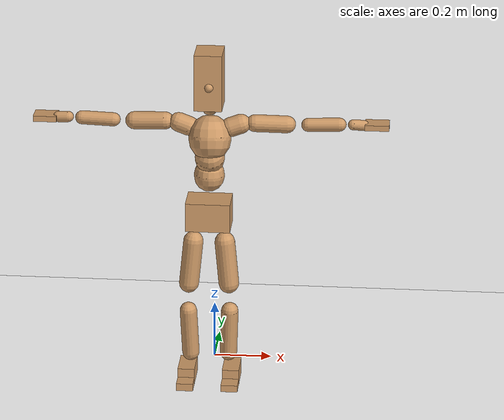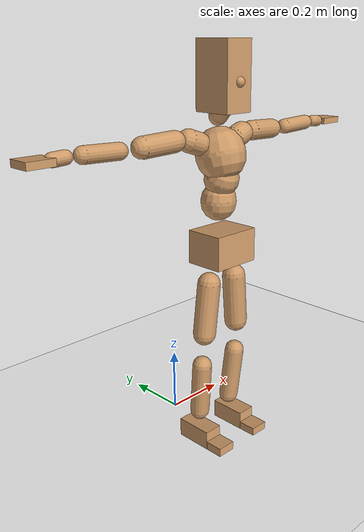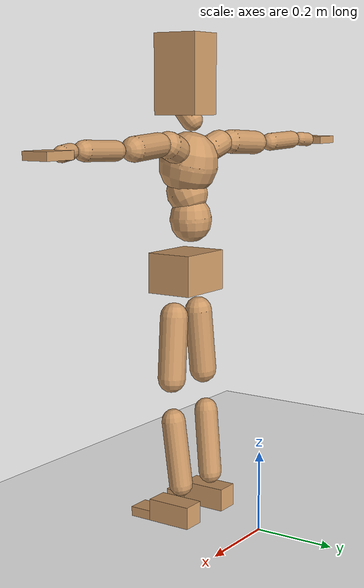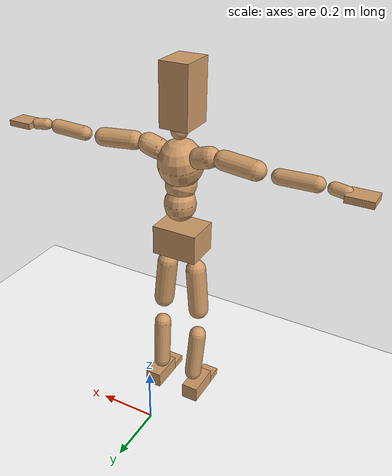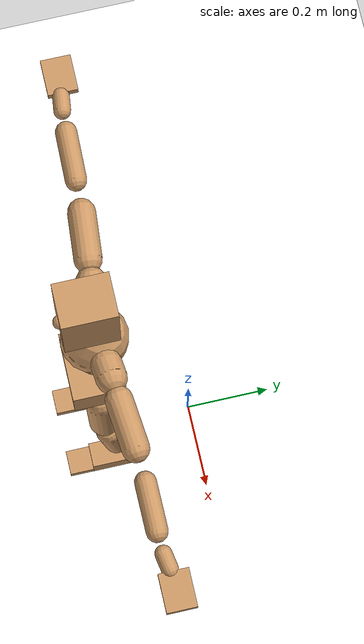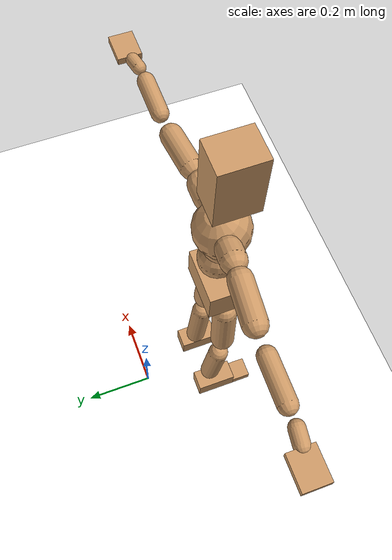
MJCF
<mujoco model="humanoid">
  <option integrator="implicitfast" />

  <visual>
    <global offwidth="1280" offheight="960" />
    <headlight active="1" ambient="0.34 0.34 0.34" diffuse="0.5 0.5 0.5" />
  </visual>

  <default>
    <joint damping="2" stiffness="2" armature="0.01" limited="true" solimplimit="0 .99 .01" />
    <geom condim="1" friction="0.7 0.005 0.0001" solimp=".99 .99 .003" solref="0.015 1" margin="0.001" rgba="0.8 0.6 .4 1" />
    <default class="smplcontact">
      <geom condim="3" friction="1. 0.005 0.0001" solref="0.015 1" solimp="0.98 0.98 0.001" priority="1" />
    </default>
    <default class="stiff_medium">
      <joint stiffness="10" />
    </default>
    <default class="stiff_medium_higher">
      <joint stiffness="50" />
    </default>
    <default class="stiff_high">
      <joint stiffness="100" />
    </default>
  </default>

  <asset>
    <texture type="skybox" builtin="gradient" rgb1="0.99 0.99 0.99" rgb2="0.608 0.828 0.892" width="100" />
    <texture builtin="flat" height="1278" mark="cross" markrgb="1 1 1" name="texgeom" random="0.01" rgb1="0.8 0.6 0.4" rgb2="0.8 0.6 0.4" type="cube" width="127" />
    <texture name="texplane" type="2d" builtin="checker" markrgb="1 1 1" rgb1="0.756 0.772 0.76" rgb2="0.6 0.6 0.6" width="100" height="100" />
    <material name="MatPlane" reflectance="0.5" texture="texplane" texrepeat="1 1" texuniform="true" />
    <material name="geom" texture="texgeom" texuniform="true" />
  </asset>

  <worldbody>
    <light name="tracking_light" pos="0 0 7" dir="0 0 -1" directional="true" cutoff="100" exponent="1" diffuse="1 1 1" specular="0.1 0.1 0.1" mode="trackcom" />
    <camera name="back" pos="0 3 2.4" xyaxes="-1 0 0 0 -1 2" mode="trackcom" />
    <camera name="side" pos="-3 0 2.4" xyaxes="0 -1 0 1 0 2" mode="trackcom" />
    <camera name="front_side" pos="-2.8 -2.8 0.8" xyaxes="0.5 -0.5 0 0.1 0.1 1" mode="trackcom" />
    <geom condim="3" name="floor" pos="0 0 0" rgba="1 1 1 1" size="100 100 .2" type="plane" material="MatPlane" />
    <body name="Pelvis" pos="-0.0018 -0.2233 0.640442" euler="90 0 0">
      <site name="Pelvis" size="0.01" />
      <freejoint name="Pelvis" />
      <geom type="box" pos="0 -0.00841676 -0.0039534" size="0.0768397 0.0502223 0.0596604" quat="1.0000 0.0000 0.0000 0.0000" density="3165.830099" name="Pelvis" />
      <body name="L_Hip" pos="0.0499566 -0.0635778 -0.00488784">
        <joint name="L_Hip_x" type="hinge" pos="0 0 0" axis="1 0 0" stiffness="1.4435114285714286" range="-160.0 22.92" class="stiff_medium" damping="1.8055693074082326" armature="0.0010037500560024384"/>
        <joint name="L_Hip_y" type="hinge" pos="0 0 0" axis="0 1 0" stiffness="1.4474810204081634" range="-70.0 70.0" class="stiff_medium" damping="1.0898184230190353" armature="0.000820531791716886"/>
        <joint name="L_Hip_z" type="hinge" pos="0 0 0" axis="0 0 1" stiffness="1.4475604081632654" range="-28.65 90.0" class="stiff_medium" damping="1.2052482108207931" armature="0.0010034974993063548"/>
        <geom type="capsule" density="2040.816327" fromto="0.0047474 -0.0516983 -0.000620282 0.018878 -0.206929 -0.00248139" size="0.0349136" name="L_Hip" />
        <body name="L_Knee" pos="0.0236254 -0.258627 -0.00310167">
          <joint name="L_Knee_x" type="hinge" pos="0 0 0" axis="1 0 0" range="-5.16 171.89" damping="0.9782346207754218" armature="0.0010306833616320807" stiffness="0.29014214285714285"/>
          <joint name="L_Knee_y" type="hinge" pos="0 0 0" axis="0 1 0" range="-4.58 6.88" damping="0.8874071365348373" armature="0.0008529901513204316" stiffness="0.288504"/>
          <joint name="L_Knee_z" type="hinge" pos="0 0 0" axis="0 0 1" range="-6.88 4.58" damping="0.9845656842141446" armature="0.0010296405233437727" stiffness="0.2942075306122449"/>
          <geom type="capsule" density="1234.567901" fromto="-0.00186411 -0.0548193 -0.00600089 -0.00751145 -0.219281 -0.0241137" size="0.0296901" name="L_Knee" />
          <body name="L_Ankle" pos="-0.00937557 -0.2741 -0.0301146">
            <joint name="L_Ankle_x" type="hinge" pos="0 0 0" axis="1 0 0" range="-45.84 45.84" class="stiff_medium" damping="0.8161984379423823" armature="0.0010997441188726849" stiffness="1.6826638696808507"/>
            <joint name="L_Ankle_y" type="hinge" pos="0 0 0" axis="0 1 0" range="-74.48 22.92" class="stiff_medium" damping="0.3994932548215907" armature="0.0011029711649096219" stiffness="1.6077267346938777"/>
            <joint name="L_Ankle_z" type="hinge" pos="0 0 0" axis="0 0 1" range="-4.58 4.58" class="stiff_medium" damping="0.6975882575056699" armature="0.0009034196987723482" stiffness="1.4962572448979592"/>
            <geom type="box" pos="0.0140732 -0.0144356 0.016427" size="0.0291732 0.0280256 0.057698" quat="1.0000 0.0000 0.0000 0.0000" density="449.071558" name="L_Ankle" class="smplcontact" />
            <body name="L_Toe" pos="0.0159456 -0.0337032 0.0809808">
              <joint name="L_Toe_x" type="hinge" pos="0 0 0" axis="1 0 0" range="-91.67 22.92" armature="0.0011149677876983435" damping="0.27350570149903464" stiffness="0.3354597755102041"/>
              <joint name="L_Toe_y" type="hinge" pos="0 0 0" axis="0 1 0" range="-4.58 4.58" armature="0.0010554260131855492" damping="0.2651046312531782" stiffness="0.3329483290816327"/>
              <joint name="L_Toe_z" type="hinge" pos="0 0 0" axis="0 0 1" range="-4.58 4.58" armature="0.000903419494061008" damping="0.2324884203440568" stiffness="0.29914599999999997"/>
              <geom type="box" pos="-0.001812 0.003322 0.0168342" size="0.0288712 0.01208 0.0336685" quat="1.0000 0.0000 0.0000 0.0000" density="423.206892" name="L_Toe" class="smplcontact" />
            </body>
          </body>
        </body>
      </body>
      <body name="R_Hip" pos="-0.0486628 -0.0629518 -0.00309084">
        <joint name="R_Hip_x" type="hinge" pos="0 0 0" axis="1 0 0" stiffness="1.4435114285714286" range="-160.0 22.92" class="stiff_medium" damping="1.8055693074082326" armature="0.0010037500560024384"/>
        <joint name="R_Hip_y" type="hinge" pos="0 0 0" axis="0 1 0" stiffness="1.4474810204081634" range="-70.0 70.0" class="stiff_medium" damping="1.0898184230190353" armature="0.000820531791716886"/>
        <joint name="R_Hip_z" type="hinge" pos="0 0 0" axis="0 0 1" stiffness="1.4475604081632654" range="-90.0 28.65" class="stiff_medium" damping="1.2052482108207931" armature="0.0010034974993063548"/>
        <geom type="capsule" density="2040.816327" fromto="-0.00529919 -0.0527324 -0.00123661 -0.0210842 -0.210996 -0.0048899" size="0.0344026" name="R_Hip" />
        <body name="R_Knee" pos="-0.0263834 -0.263728 -0.00612652">
          <joint name="R_Knee_x" type="hinge" pos="0 0 0" axis="1 0 0" range="-5.16 171.89" damping="0.9782346207754218" armature="0.0010306833616320807" stiffness="0.29014214285714285"/>
          <joint name="R_Knee_y" type="hinge" pos="0 0 0" axis="0 1 0" range="-6.88 4.58" damping="0.8874071365348373" armature="0.0008529901513204316" stiffness="0.288504"/>
          <joint name="R_Knee_z" type="hinge" pos="0 0 0" axis="0 0 1" range="-4.58 6.88" damping="0.9845656842141446" armature="0.0010296405233437727" stiffness="0.2942075306122449"/>
          <geom type="capsule" density="1234.567901" fromto="0.00219475 -0.0548907 -0.00584525 0.00866853 -0.21949 -0.0232694" size="0.0296901" name="R_Knee" />
          <body name="R_Ankle" pos="0.0108633 -0.274381 -0.0291146">
            <joint name="R_Ankle_x" type="hinge" pos="0 0 0" axis="1 0 0" range="-45.84 45.84" class="stiff_medium" damping="0.8161984379423823" armature="0.0010997441188726849" stiffness="1.6826638696808507"/>
            <joint name="R_Ankle_y" type="hinge" pos="0 0 0" axis="0 1 0" range="-22.92 74.48" class="stiff_medium" damping="0.3994932548215907" armature="0.0011029711649096219" stiffness="1.6077267346938777"/>
            <joint name="R_Ankle_z" type="hinge" pos="0 0 0" axis="0 0 1" range="-4.58 4.58" class="stiff_medium" damping="0.6975882575056699" armature="0.0009034196987723482" stiffness="1.4962572448979592"/>
            <geom type="box" pos="-0.0128048 -0.0105096 0.0173773" size="0.0291732 0.0288712 0.0587162" quat="1.0000 0.0000 0.0000 0.0000" density="434.700981" name="R_Ankle" class="smplcontact" />
            <body name="R_Toe" pos="-0.0153416 -0.0290524 0.083696">
              <joint name="R_Toe_x" type="hinge" pos="0 0 0" axis="1 0 0" range="-91.67 22.92" armature="0.0011149677876983435" damping="0.27350570149903464" stiffness="0.3354597755102041"/>
              <joint name="R_Toe_y" type="hinge" pos="0 0 0" axis="0 1 0" range="-4.58 4.58" armature="0.0010554260131855492" damping="0.2651046312531782" stiffness="0.3329483290816327"/>
              <joint name="R_Toe_z" type="hinge" pos="0 0 0" axis="0 0 1" range="-4.58 4.58" armature="0.000903419494061008" damping="0.2324884203440568" stiffness="0.29914599999999997"/>
              <geom type="box" pos="0.0025368 0.002718 0.0154088" size="0.0289316 0.0130464 0.0334648" quat="1.0000 0.0000 0.0000 0.0000" density="407.384095" name="R_Toe" class="smplcontact" />
            </body>
          </body>
        </body>
      </body>
      <body name="Torso" pos="-0.001797 0.0758204 -0.019192">
        <joint name="Torso_x" type="hinge" pos="0 0 0" axis="1 0 0" range="-25.78 57.3" class="stiff_medium" damping="3.3466509204578423" armature="0.0019444567009853787" stiffness="2.5600004081632655"/>
        <joint name="Torso_y" type="hinge" pos="0 0 0" axis="0 1 0" range="-57.3 57.3" class="stiff_high" damping="3.4239488161939002" armature="0.001114555096926135" stiffness="26.2962"/>
        <joint name="Torso_z" type="hinge" pos="0 0 0" axis="0 0 1" range="-34.38 34.38" class="stiff_high" damping="4.130510414994381" armature="0.001661490498603756" stiffness="25.671402127659583"/>
        <geom type="capsule" density="2040.816327" fromto="0.0017455 0.0425967 0.000349101 0.0020958 0.0520548 0.000419161" size="0.0520152" name="Torso" />
        <body name="Spine" pos="0.0038414 0.0947216 0.000768279">
          <joint name="Spine_x" type="hinge" pos="0 0 0" axis="1 0 0" stiffness="2.665857346938776" range="-25.78 57.3" class="stiff_medium" damping="3.582128845617695" armature="0.0021392570980490735"/>
          <joint name="Spine_y" type="hinge" pos="0 0 0" axis="0 1 0" stiffness="2.712602765957447" range="-57.3 57.3" class="stiff_high" damping="1.3894708088073262" armature="0.0011120714212866914"/>
          <joint name="Spine_z" type="hinge" pos="0 0 0" axis="0 0 1" stiffness="5.286907272727274" range="-34.38 34.38" class="stiff_high" damping="2.447944236497594" armature="0.0015742324166410286"/>
          <geom type="capsule" density="2040.816327" fromto="0.000484299 0.0166717 0.00799226 0.000554359 0.0203849 0.00981382" size="0.0510682" name="Spine" />
          <body name="Chest" pos="0.00103866 0.0370567 0.0178061">
            <joint name="Chest_x" type="hinge" pos="0 0 0" axis="1 0 0" stiffness="2.7215524444444443" range="-25.78 57.3" class="stiff_medium" damping="3.7093601898879403" armature="0.002246977830843523"/>
            <joint name="Chest_y" type="hinge" pos="0 0 0" axis="0 1 0" stiffness="2.388109666666667" range="-57.3 57.3" class="stiff_high" damping="1.3028502586120798" armature="0.0011105925771923062"/>
            <joint name="Chest_z" type="hinge" pos="0 0 0" axis="0 0 1" stiffness="5.539173023255813" range="-34.38 34.38" class="stiff_high" damping="2.461140555293816" armature="0.0015187818769960958"/>
            <geom type="capsule" density="2040.816327" fromto="-0.000642928 0.0477829 -0.0121122 -0.000712988 0.058362 -0.0148446" size="0.0729656" name="Chest" />
            <body name="Neck" pos="-0.00200041 0.149941 -0.0297362">
              <joint name="Neck_x" type="hinge" pos="0 0 0" axis="1 0 0" range="-28.65 57.3" class="stiff_medium_higher" damping="3.3677529619663344" armature="0.0031223109587198926" stiffness="18.16244468085106"/>
              <joint name="Neck_y" type="hinge" pos="0 0 0" axis="0 1 0" range="-40.11 40.11" class="stiff_medium_higher" damping="3.1233087236470336" armature="0.00272617026606622" stiffness="17.891504255319152"/>
              <joint name="Neck_z" type="hinge" pos="0 0 0" axis="0 0 1" range="-40.11 40.11" class="stiff_medium_higher" damping="3.5190884162963605" armature="0.0031813014022193595" stiffness="19.463706382978728"/>
              <geom type="capsule" density="1000" fromto="0.000681911 0.0088408 0.00700279 0.00278991 0.0353608 0.0279468" size="0.0272326" name="Neck" />
              <body name="Head" pos="0.00353409 0.0441992 0.0348852">
                <joint name="Head_x" type="hinge" pos="0 0 0" axis="1 0 0" range="-28.65 57.3" class="stiff_medium_higher" damping="0.7969552850782909" armature="0.003631055780558318" stiffness="21.864774489795916"/>
                <joint name="Head_y" type="hinge" pos="0 0 0" axis="0 1 0" range="-40.11 40.11" class="stiff_medium_higher" damping="0.7278195769797128" armature="0.0031350339842456322" stiffness="21.121036458333332"/>
                <joint name="Head_z" type="hinge" pos="0 0 0" axis="0 0 1" range="-40.11 40.11" class="stiff_medium_higher" damping="0.7958869503566885" armature="0.003661443877898695" stiffness="21.625213265306122"/>
                <geom type="box" pos="-0.00327432 0.0743461 -0.00904336" size="0.0472438 0.09794 0.0592496" quat="1.0000 0.0000 0.0000 0.0000" density="1018.069894" name="Head" />
                <geom type="capsule" name="nose" size="0.015592 0.007796" pos="0 0.059409 0.03898" quat="1 0 0 0" mass="0" contype="0" conaffinity="0" />
              </body>
            </body>
            <body name="L_Thorax" pos="0.0574044 0.0852588 -0.023963">
              <joint name="L_Thorax_x" type="hinge" pos="0 0 0" axis="1 0 0" range="-10.89 4.58" class="stiff_medium_higher" damping="2.356328992993461" armature="0.0009016855748194057" stiffness="7.697093197278912"/>
              <joint name="L_Thorax_y" type="hinge" pos="0 0 0" axis="0 1 0" range="-28.65 17.19" class="stiff_medium_higher" damping="2.491058324527435" armature="0.0010491863533980744" stiffness="7.393076020408163"/>
              <joint name="L_Thorax_z" type="hinge" pos="0 0 0" axis="0 0 1" range="-31.51 40.11" class="stiff_medium_higher" damping="2.4960131106012198" armature="0.0010486891229833626" stiffness="7.4260346938775506"/>
              <geom type="capsule" density="1000" fromto="0.0116243 0.00389606 -0.00114989 0.0464973 0.0155843 -0.004535" size="0.0336358" name="L_Thorax" />
              <body name="L_Shoulder" pos="0.0581217 0.0194803 -0.00568489">
                <joint name="L_Shoulder_x" type="hinge" pos="0 0 0" axis="1 0 0" range="-97.4 97.4" class="stiff_medium" damping="0.6895070244663385" armature="0.000849066735394822" stiffness="1.5553676530612242"/>
                <joint name="L_Shoulder_y" type="hinge" pos="0 0 0" axis="0 1 0" range="-108.86 80.21" class="stiff_medium" damping="0.7770179904463339" armature="0.0010911375324762415" stiffness="1.5370222448979591"/>
                <joint name="L_Shoulder_z" type="hinge" pos="0 0 0" axis="0 0 1" range="-97.4 85.94" class="stiff_medium" damping="0.7774575128228121" armature="0.0010912652195444754" stiffness="1.5385815306122452"/>
                <geom type="capsule" density="1000" fromto="0.0360813 -0.00179918 -0.00382321 0.144393 -0.0070827 -0.015294" size="0.0296086" name="L_Shoulder" />
                <body name="L_Elbow" pos="0.180475 -0.00888187 -0.0191172">
                  <joint name="L_Elbow_x" type="hinge" pos="0 0 0" axis="1 0 0" range="-17.19 4.58" damping="0.5629313687424012" armature="0.000796633611414303" stiffness="0.3182308367346939"/>
                  <joint name="L_Elbow_y" type="hinge" pos="0 0 0" axis="0 1 0" range="-180.0 17.19" damping="0.670699656724394" armature="0.0011308131035313198" stiffness="0.31824040816326526"/>
                  <joint name="L_Elbow_z" type="hinge" pos="0 0 0" axis="0 0 1" range="-100.84 4.58" damping="0.6709017588305417" armature="0.0011312590747464865" stiffness="0.31830669387755106"/>
                  <geom type="capsule" density="1000" fromto="0.0354377 0.00128055 -0.000146907 0.141893 0.00512319 -0.000645027" size="0.0231943" name="L_Elbow" />
                  <body name="L_Wrist" pos="0.177331 0.00640373 -0.000849204">
                    <joint name="L_Wrist_x" type="hinge" pos="0 0 0" axis="1 0 0" range="-180.0 22.92" armature="0.0008788801206494816" damping="0.24131789769782877" stiffness="0.3312984693877551"/>
                    <joint name="L_Wrist_y" type="hinge" pos="0 0 0" axis="0 1 0" range="-17.19 17.19" armature="0.0011443350528931005" damping="0.2738265258955244" stiffness="0.32761806122448983"/>
                    <joint name="L_Wrist_z" type="hinge" pos="0 0 0" axis="0 0 1" range="-22.92 22.92" armature="0.0011533193959445951" damping="0.27532537820688235" stiffness="0.328634306122449"/>
                    <geom type="capsule" density="1000" fromto="0.0114186 -0.00109105 -0.00203904 0.0456755 -0.00442158 -0.00815634" size="0.0182119" name="L_Wrist" class="smplcontact" />
                    <body name="L_Hand" pos="0.0570933 -0.00556983 -0.010138">
                      <joint name="L_Hand_x" type="hinge" pos="0 0 0" axis="1 0 0" range="-17.19 17.19" armature="0.0009404185163007659" damping="0.2591818995410865" stiffness="0.35715618038852914"/>
                      <joint name="L_Hand_y" type="hinge" pos="0 0 0" axis="0 1 0" range="-51.57 51.57" armature="0.001206309459621808" damping="0.29583778749218415" stiffness="0.362759306122449"/>
                      <joint name="L_Hand_z" type="hinge" pos="0 0 0" axis="0 0 1" range="-91.67 91.67" armature="0.0012783090615630592" damping="0.3050915122843883" stiffness="0.36407795918367347"/>
                      <geom type="box" pos="0.0348354 0.000604 -0.0035032" size="0.0413361 0.0095432 0.0324952" quat="1.0000 0.0000 0.0000 0.0000" density="400.552564" name="L_Hand" class="smplcontact" />
                    </body>
                  </body>
                </body>
              </body>
            </body>
            <body name="R_Thorax" pos="-0.0595446 0.0831645 -0.0272444">
              <joint name="R_Thorax_x" type="hinge" pos="0 0 0" axis="1 0 0" range="-10.89 4.58" class="stiff_medium_higher" damping="2.356328992993461" armature="0.0009016855748194057" stiffness="7.697093197278912"/>
              <joint name="R_Thorax_y" type="hinge" pos="0 0 0" axis="0 1 0" range="-17.19 28.65" class="stiff_medium_higher" damping="2.491058324527435" armature="0.0010491863533980744" stiffness="7.393076020408163"/>
              <joint name="R_Thorax_z" type="hinge" pos="0 0 0" axis="0 0 1" range="-40.11 31.51" class="stiff_medium_higher" damping="2.4960131106012198" armature="0.0010486891229833626" stiffness="7.4260346938775506"/>
              <geom type="capsule" density="1000" fromto="-0.0122631 0.00415156 -0.00114943 -0.0490522 0.0166062 -0.00466228" size="0.0329902" name="R_Thorax" />
              <body name="R_Shoulder" pos="-0.061315 0.0208223 -0.00581169">
                <joint name="R_Shoulder_x" type="hinge" pos="0 0 0" axis="1 0 0" range="-97.4 97.4" class="stiff_medium" damping="0.6895070244663385" armature="0.000849066735394822" stiffness="1.5553676530612242"/>
                <joint name="R_Shoulder_y" type="hinge" pos="0 0 0" axis="0 1 0" range="-80.21 108.86" class="stiff_medium" damping="0.7770179904463339" armature="0.0010911375324762415" stiffness="1.5370222448979591"/>
                <joint name="R_Shoulder_z" type="hinge" pos="0 0 0" axis="0 0 1" range="-85.94 97.4" class="stiff_medium" damping="0.7774575128228121" armature="0.0010912652195444754" stiffness="1.5385815306122452"/>
                <geom type="capsule" density="1000" fromto="-0.0352473 -0.00187256 -0.00298464 -0.141126 -0.00743416 -0.0118832" size="0.0304104" name="R_Shoulder" />
                <body name="R_Elbow" pos="-0.176373 -0.00924942 -0.0148678">
                  <joint name="R_Elbow_x" type="hinge" pos="0 0 0" axis="1 0 0" range="-17.19 4.58" damping="0.5629313687424012" armature="0.000796633611414303" stiffness="0.3182308367346939"/>
                  <joint name="R_Elbow_y" type="hinge" pos="0 0 0" axis="0 1 0" range="-17.19 180.0" damping="0.670699656724394" armature="0.0011308131035313198" stiffness="0.31824040816326526"/>
                  <joint name="R_Elbow_z" type="hinge" pos="0 0 0" axis="0 0 1" range="-4.58 100.84" damping="0.6709017588305417" armature="0.0011312590747464865" stiffness="0.31830669387755106"/>
                  <geom type="capsule" density="1000" fromto="-0.036363 0.00112959 -0.000782965 -0.145309 0.00440295 -0.00313125" size="0.0233662" name="R_Elbow" />
                  <body name="R_Wrist" pos="-0.181672 0.00553254 -0.00397149">
                    <joint name="R_Wrist_x" type="hinge" pos="0 0 0" axis="1 0 0" range="-180.0 22.92" armature="0.0008788801206494816" damping="0.24131789769782877" stiffness="0.3312984693877551"/>
                    <joint name="R_Wrist_y" type="hinge" pos="0 0 0" axis="0 1 0" range="-17.19 17.19" armature="0.0011443350528931005" damping="0.2738265258955244" stiffness="0.32761806122448983"/>
                    <joint name="R_Wrist_z" type="hinge" pos="0 0 0" axis="0 0 1" range="-22.92 22.92" armature="0.0011533193959445951" damping="0.27532537820688235" stiffness="0.328634306122449"/>
                    <geom type="capsule" density="1000" fromto="-0.0114872 -0.000818965 -0.0014234 -0.0460159 -0.00333385 -0.00563754" size="0.01867" name="R_Wrist" class="smplcontact" />
                    <body name="R_Hand" pos="-0.0575018 -0.00415273 -0.00700351">
                      <joint name="R_Hand_x" type="hinge" pos="0 0 0" axis="1 0 0" range="-17.19 17.19" armature="0.0009404185163007659" damping="0.2591818995410865" stiffness="0.35715618038852914"/>
                      <joint name="R_Hand_y" type="hinge" pos="0 0 0" axis="0 1 0" range="-51.57 51.57" armature="0.001206309459621808" damping="0.29583778749218415" stiffness="0.362759306122449"/>
                      <joint name="R_Hand_z" type="hinge" pos="0 0 0" axis="0 0 1" range="-91.67 91.67" armature="0.0012783090615630592" damping="0.3050915122843883" stiffness="0.36407795918367347"/>
                      <geom type="box" pos="-0.0326449 -0.0005436 -0.0047716" size="0.0402055 0.0099056 0.0329784" quat="1.0000 0.0000 0.0000 0.0000" density="403.679611" name="R_Hand" class="smplcontact" />
                    </body>
                  </body>
                </body>
              </body>
            </body>
          </body>
        </body>
      </body>
    </body>
  </worldbody>
  <actuator>
    <general name="L_Hip_x" joint="L_Hip_x" biastype="affine" gainprm="41.4764231296646" biasprm="-31.0823752603019 -25.983205714285713 -0.2407425743210977" ctrllimited="true" ctrlrange="-1 1" forcerange="-51.966411428571426 51.966411428571426" />
    <general name="L_Hip_y" joint="L_Hip_y" biastype="affine" gainprm="31.831770179474603" biasprm="0.0 -26.054658367346942 -0.21796368460380705" ctrllimited="true" ctrlrange="-1 1" forcerange="-52.109316734693884 52.109316734693884" />
    <general name="L_Hip_z" joint="L_Hip_z" biastype="affine" gainprm="26.978904816264805" biasprm="13.949901478953608 -26.056087346938778 -0.2410496421641586" ctrllimited="true" ctrlrange="-1 1" forcerange="-52.112174693877556 52.112174693877556" />
    <general name="L_Knee_x" joint="L_Knee_x" biastype="affine" gainprm="40.345641639289624" biasprm="37.99394990408788 -26.112792857142857 -0.24455865519385545" ctrllimited="true" ctrlrange="-1 1" forcerange="-52.225585714285714 52.225585714285714" />
    <general name="L_Knee_y" joint="L_Knee_y" biastype="affine" gainprm="2.5967272644580874" biasprm="0.5211581769854801 -25.965359999999997 -0.22185178413370932" ctrllimited="true" ctrlrange="-1 1" forcerange="-51.930719999999994 51.930719999999994" />
    <general name="L_Knee_z" joint="L_Knee_z" biastype="affine" gainprm="2.6480628211383683" biasprm="-0.5314611246612782 -26.47867775510204 -0.24614142105353615" ctrllimited="true" ctrlrange="-1 1" forcerange="-52.95735551020408 52.95735551020408" />
    <general name="L_Ankle_x" joint="L_Ankle_x" biastype="affine" gainprm="12.116072282724167" biasprm="0.0 -15.143974827127657 -0.2720661459807941" ctrllimited="true" ctrlrange="-1 1" forcerange="-30.287949654255314 30.287949654255314" />
    <general name="L_Ankle_y" joint="L_Ankle_y" biastype="affine" gainprm="12.298752784320362" biasprm="-6.510510200816816 -14.4695406122449 -0.26632883654772715" ctrllimited="true" ctrlrange="-1 1" forcerange="-28.9390812244898 28.9390812244898" />
    <general name="L_Ankle_z" joint="L_Ankle_z" biastype="affine" gainprm="1.0764444459754925" biasprm="0.0 -13.466315204081631 -0.23252941916855663" ctrllimited="true" ctrlrange="-1 1" forcerange="-26.932630408163263 26.932630408163263" />
    <general name="L_Toe_x" joint="L_Toe_x" biastype="affine" gainprm="12.076387616034964" biasprm="-7.245411018434451 -12.076551918367349 -0.10940228059961386" ctrllimited="true" ctrlrange="-1 1" forcerange="-24.153103836734697 24.153103836734697" />
    <general name="L_Toe_y" joint="L_Toe_y" biastype="affine" gainprm="0.9581250305957544" biasprm="0.0 -11.986139846938777 -0.10604185250127128" ctrllimited="true" ctrlrange="-1 1" forcerange="-23.972279693877553 23.972279693877553" />
    <general name="L_Toe_z" joint="L_Toe_z" biastype="affine" gainprm="0.8608521063709073" biasprm="0.0 -10.769255999999999 -0.09299536813762273" ctrllimited="true" ctrlrange="-1 1" forcerange="-21.538511999999997 21.538511999999997" />
    <general name="R_Hip_x" joint="R_Hip_x" biastype="affine" gainprm="41.4764231296646" biasprm="-31.0823752603019 -25.983205714285713 -0.2407425743210977" ctrllimited="true" ctrlrange="-1 1" forcerange="-51.966411428571426 51.966411428571426" />
    <general name="R_Hip_y" joint="R_Hip_y" biastype="affine" gainprm="31.831770179474603" biasprm="0.0 -26.054658367346942 -0.21796368460380705" ctrllimited="true" ctrlrange="-1 1" forcerange="-52.109316734693884 52.109316734693884" />
    <general name="R_Hip_z" joint="R_Hip_z" biastype="affine" gainprm="26.978904816264805" biasprm="-13.949901478953608 -26.056087346938778 -0.2410496421641586" ctrllimited="true" ctrlrange="-1 1" forcerange="-52.112174693877556 52.112174693877556" />
    <general name="R_Knee_x" joint="R_Knee_x" biastype="affine" gainprm="40.345641639289624" biasprm="37.99394990408788 -26.112792857142857 -0.24455865519385545" ctrllimited="true" ctrlrange="-1 1" forcerange="-52.225585714285714 52.225585714285714" />
    <general name="R_Knee_y" joint="R_Knee_y" biastype="affine" gainprm="2.5967272644580874" biasprm="-0.5211581769854801 -25.965359999999997 -0.22185178413370932" ctrllimited="true" ctrlrange="-1 1" forcerange="-51.930719999999994 51.930719999999994" />
    <general name="R_Knee_z" joint="R_Knee_z" biastype="affine" gainprm="2.6480628211383683" biasprm="0.5314611246612782 -26.47867775510204 -0.24614142105353615" ctrllimited="true" ctrlrange="-1 1" forcerange="-52.95735551020408 52.95735551020408" />
    <general name="R_Ankle_x" joint="R_Ankle_x" biastype="affine" gainprm="12.116072282724167" biasprm="0.0 -15.143974827127657 -0.2720661459807941" ctrllimited="true" ctrlrange="-1 1" forcerange="-30.287949654255314 30.287949654255314" />
    <general name="R_Ankle_y" joint="R_Ankle_y" biastype="affine" gainprm="12.298752784320362" biasprm="6.510510200816816 -14.4695406122449 -0.26632883654772715" ctrllimited="true" ctrlrange="-1 1" forcerange="-28.9390812244898 28.9390812244898" />
    <general name="R_Ankle_z" joint="R_Ankle_z" biastype="affine" gainprm="1.0764444459754925" biasprm="0.0 -13.466315204081631 -0.23252941916855663" ctrllimited="true" ctrlrange="-1 1" forcerange="-26.932630408163263 26.932630408163263" />
    <general name="R_Toe_x" joint="R_Toe_x" biastype="affine" gainprm="12.076387616034964" biasprm="-7.245411018434451 -12.076551918367349 -0.10940228059961386" ctrllimited="true" ctrlrange="-1 1" forcerange="-24.153103836734697 24.153103836734697" />
    <general name="R_Toe_y" joint="R_Toe_y" biastype="affine" gainprm="0.9581250305957544" biasprm="0.0 -11.986139846938777 -0.10604185250127128" ctrllimited="true" ctrlrange="-1 1" forcerange="-23.972279693877553 23.972279693877553" />
    <general name="R_Toe_z" joint="R_Toe_z" biastype="affine" gainprm="0.8608521063709073" biasprm="0.0 -10.769255999999999 -0.09299536813762273" ctrllimited="true" ctrlrange="-1 1" forcerange="-21.538511999999997 21.538511999999997" />
    <general name="Torso_x" joint="Torso_x" biastype="affine" gainprm="44.54460744948417" biasprm="16.899928103126392 -61.44000979591837 -0.8924402454554247" ctrllimited="true" ctrlrange="-1 1" forcerange="-92.16001469387756 92.16001469387756" />
    <general name="Torso_y" joint="Torso_y" biastype="affine" gainprm="63.11552883531852" biasprm="0.0 -63.110879999999995 -0.68478976323878" ctrllimited="true" ctrlrange="-1 1" forcerange="-94.66631999999998 94.66631999999998" />
    <general name="Torso_z" joint="Torso_z" biastype="affine" gainprm="36.969542091207614" biasprm="0.0 -61.611365106383 -0.8261020829988763" ctrllimited="true" ctrlrange="-1 1" forcerange="-92.4170476595745 92.4170476595745" />
    <general name="Spine_x" joint="Spine_x" biastype="affine" gainprm="46.38654300876102" biasprm="17.598746216130802 -63.980576326530624 -0.9552343588313853" ctrllimited="true" ctrlrange="-1 1" forcerange="-95.97086448979593 95.97086448979593" />
    <general name="Spine_y" joint="Spine_y" biastype="affine" gainprm="65.10726192132401" biasprm="0.0 -65.10246638297873 -0.6947354044036631" ctrllimited="true" ctrlrange="-1 1" forcerange="-97.65369957446809 97.65369957446809" />
    <general name="Spine_z" joint="Spine_z" biastype="affine" gainprm="38.06853633849836" biasprm="0.0 -63.44288727272728 -0.8159814121658647" ctrllimited="true" ctrlrange="-1 1" forcerange="-95.16433090909092 95.16433090909092" />
    <general name="Chest_x" joint="Chest_x" biastype="affine" gainprm="47.355650766455" biasprm="17.96641926045572 -65.31725866666666 -0.9891627173034507" ctrllimited="true" ctrlrange="-1 1" forcerange="-97.975888 97.975888" />
    <general name="Chest_y" joint="Chest_y" biastype="affine" gainprm="57.318853875618125" biasprm="0.0 -57.314632 -0.6514251293060399" ctrllimited="true" ctrlrange="-1 1" forcerange="-85.971948 85.971948" />
    <general name="Chest_z" joint="Chest_z" biastype="affine" gainprm="39.88498353447884" biasprm="0.0 -66.47007627906976 -0.8203801850979388" ctrllimited="true" ctrlrange="-1 1" forcerange="-99.70511441860464 99.70511441860464" />
    <general name="Neck_x" joint="Neck_x" biastype="affine" gainprm="9.808442577983886" biasprm="3.2694808593279623 -13.076960170212764 -0.26942023695730677" ctrllimited="true" ctrlrange="-1 1" forcerange="-26.15392034042553 26.15392034042553" />
    <general name="Neck_y" joint="Neck_y" biastype="affine" gainprm="9.017982372894267" biasprm="0.0 -12.88188306382979 -0.2498646978917627" ctrllimited="true" ctrlrange="-1 1" forcerange="-25.76376612765958 25.76376612765958" />
    <general name="Neck_z" joint="Neck_z" biastype="affine" gainprm="9.810430613776292" biasprm="0.0 -14.013868595744686 -0.28152707330370885" ctrllimited="true" ctrlrange="-1 1" forcerange="-28.027737191489372 28.027737191489372" />
    <general name="Head_x" joint="Head_x" biastype="affine" gainprm="7.871898628633326" biasprm="2.623966209544442 -10.49509175510204 -0.3187821140313164" ctrllimited="true" ctrlrange="-1 1" forcerange="-20.99018351020408 20.99018351020408" />
    <general name="Head_y" joint="Head_y" biastype="affine" gainprm="7.097191000467185" biasprm="0.0 -10.1380975 -0.29112783079188514" ctrllimited="true" ctrlrange="-1 1" forcerange="-20.276195 20.276195" />
    <general name="Head_z" joint="Head_z" biastype="affine" gainprm="7.266606886100949" biasprm="0.0 -10.38010236734694 -0.31835478014267543" ctrllimited="true" ctrlrange="-1 1" forcerange="-20.76020473469388 20.76020473469388" />
    <general name="L_Thorax_x" joint="L_Thorax_x" biastype="affine" gainprm="2.493880689443451" biasprm="-1.0172195960173356 -18.47302367346939 -0.1885063194394769" ctrllimited="true" ctrlrange="-1 1" forcerange="-36.94604734693878 36.94604734693878" />
    <general name="L_Thorax_y" joint="L_Thorax_y" biastype="affine" gainprm="7.097875780497157" biasprm="-1.7744689451242892 -17.743382448979588 -0.1992846659621948" ctrllimited="true" ctrlrange="-1 1" forcerange="-35.486764897959176 35.486764897959176" />
    <general name="L_Thorax_z" joint="L_Thorax_z" biastype="affine" gainprm="11.139094906368923" biasprm="1.3375623596030821 -17.822483265306122 -0.1996810488480976" ctrllimited="true" ctrlrange="-1 1" forcerange="-35.644966530612244 35.644966530612244" />
    <general name="L_Shoulder_x" joint="L_Shoulder_x" biastype="affine" gainprm="12.691431922889718" biasprm="0.0 -7.4657647346938765 -0.18386853985769028" ctrllimited="true" ctrlrange="-1 1" forcerange="-14.931529469387753 14.931529469387753" />
    <general name="L_Shoulder_y" joint="L_Shoulder_y" biastype="affine" gainprm="12.17282522290509" biasprm="-1.8445625569166488 -7.377706775510204 -0.2072047974523557" ctrllimited="true" ctrlrange="-1 1" forcerange="-14.755413551020409 14.755413551020409" />
    <general name="L_Shoulder_z" joint="L_Shoulder_z" biastype="affine" gainprm="11.81588760162166" biasprm="-0.738573535041914 -7.385191346938777 -0.20732200341941653" ctrllimited="true" ctrlrange="-1 1" forcerange="-14.770382693877554 14.770382693877554" />
    <general name="L_Elbow_x" joint="L_Elbow_x" biastype="affine" gainprm="2.1764593612760605" biasprm="-1.2606868417864554 -11.45631012244898 -0.09006901899878421" ctrllimited="true" ctrlrange="-1 1" forcerange="-22.91262024489796 22.91262024489796" />
    <general name="L_Elbow_y" joint="L_Elbow_y" biastype="affine" gainprm="19.71469590155315" biasprm="-16.27744631944758 -11.45665469387755 -0.10731194507590305" ctrllimited="true" ctrlrange="-1 1" forcerange="-22.9133093877551 22.9133093877551" />
    <general name="L_Elbow_z" joint="L_Elbow_z" biastype="affine" gainprm="10.541894275063894" biasprm="-9.625903461559957 -11.459040979591839 -0.10734428141288668" ctrllimited="true" ctrlrange="-1 1" forcerange="-22.918081959183677 22.918081959183677" />
    <general name="L_Wrist_x" joint="L_Wrist_x" biastype="affine" gainprm="3.5200019606756547" biasprm="-2.7248270647690314 -1.9877908163265305 -0.09652715907913151" ctrllimited="true" ctrlrange="-1 1" forcerange="-3.975581632653061 3.975581632653061" />
    <general name="L_Wrist_y" joint="L_Wrist_y" biastype="affine" gainprm="0.5897559492489061" biasprm="0.0 -1.9657083673469389 -0.10953061035820977" ctrllimited="true" ctrlrange="-1 1" forcerange="-3.9314167346938778 3.9314167346938778" />
    <general name="L_Wrist_z" joint="L_Wrist_z" biastype="affine" gainprm="0.7887804330795449" biasprm="0.0 -1.9718058367346938 -0.11013015128275294" ctrllimited="true" ctrlrange="-1 1" forcerange="-3.9436116734693876 3.9436116734693876" />
    <general name="L_Hand_x" joint="L_Hand_x" biastype="affine" gainprm="0.6429284802183711" biasprm="0.0 -2.1429370823311746 -0.1036727598164346" ctrllimited="true" ctrlrange="-1 1" forcerange="-4.285874164662349 4.285874164662349" />
    <general name="L_Hand_y" joint="L_Hand_y" biastype="affine" gainprm="1.9590445483821248" biasprm="0.0 -2.176555836734694 -0.11833511499687366" ctrllimited="true" ctrlrange="-1 1" forcerange="-4.353111673469388 4.353111673469388" />
    <general name="L_Hand_z" joint="L_Hand_z" biastype="affine" gainprm="3.4950246041155797" biasprm="0.0 -2.184467755102041 -0.12203660491375533" ctrllimited="true" ctrlrange="-1 1" forcerange="-4.368935510204082 4.368935510204082" />
    <general name="R_Thorax_x" joint="R_Thorax_x" biastype="affine" gainprm="2.493880689443451" biasprm="-1.0172195960173356 -18.47302367346939 -0.1885063194394769" ctrllimited="true" ctrlrange="-1 1" forcerange="-36.94604734693878 36.94604734693878" />
    <general name="R_Thorax_y" joint="R_Thorax_y" biastype="affine" gainprm="7.097875780497157" biasprm="1.774468945124288 -17.743382448979588 -0.1992846659621948" ctrllimited="true" ctrlrange="-1 1" forcerange="-35.486764897959176 35.486764897959176" />
    <general name="R_Thorax_z" joint="R_Thorax_z" biastype="affine" gainprm="11.139094906368923" biasprm="-1.3375623596030821 -17.822483265306122 -0.1996810488480976" ctrllimited="true" ctrlrange="-1 1" forcerange="-35.644966530612244 35.644966530612244" />
    <general name="R_Shoulder_x" joint="R_Shoulder_x" biastype="affine" gainprm="12.691431922889718" biasprm="0.0 -7.4657647346938765 -0.18386853985769028" ctrllimited="true" ctrlrange="-1 1" forcerange="-14.931529469387753 14.931529469387753" />
    <general name="R_Shoulder_y" joint="R_Shoulder_y" biastype="affine" gainprm="12.17282522290509" biasprm="1.8445625569166488 -7.377706775510204 -0.2072047974523557" ctrllimited="true" ctrlrange="-1 1" forcerange="-14.755413551020409 14.755413551020409" />
    <general name="R_Shoulder_z" joint="R_Shoulder_z" biastype="affine" gainprm="11.81588760162166" biasprm="0.7385735350419124 -7.385191346938777 -0.20732200341941653" ctrllimited="true" ctrlrange="-1 1" forcerange="-14.770382693877554 14.770382693877554" />
    <general name="R_Elbow_x" joint="R_Elbow_x" biastype="affine" gainprm="2.1764593612760605" biasprm="-1.2606868417864554 -11.45631012244898 -0.09006901899878421" ctrllimited="true" ctrlrange="-1 1" forcerange="-22.91262024489796 22.91262024489796" />
    <general name="R_Elbow_y" joint="R_Elbow_y" biastype="affine" gainprm="19.71469590155315" biasprm="16.27744631944758 -11.45665469387755 -0.10731194507590305" ctrllimited="true" ctrlrange="-1 1" forcerange="-22.9133093877551 22.9133093877551" />
    <general name="R_Elbow_z" joint="R_Elbow_z" biastype="affine" gainprm="10.541894275063894" biasprm="9.625903461559956 -11.459040979591839 -0.10734428141288668" ctrllimited="true" ctrlrange="-1 1" forcerange="-22.918081959183677 22.918081959183677" />
    <general name="R_Wrist_x" joint="R_Wrist_x" biastype="affine" gainprm="3.5200019606756547" biasprm="-2.7248270647690314 -1.9877908163265305 -0.09652715907913151" ctrllimited="true" ctrlrange="-1 1" forcerange="-3.975581632653061 3.975581632653061" />
    <general name="R_Wrist_y" joint="R_Wrist_y" biastype="affine" gainprm="0.5897559492489061" biasprm="0.0 -1.9657083673469389 -0.10953061035820977" ctrllimited="true" ctrlrange="-1 1" forcerange="-3.9314167346938778 3.9314167346938778" />
    <general name="R_Wrist_z" joint="R_Wrist_z" biastype="affine" gainprm="0.7887804330795449" biasprm="0.0 -1.9718058367346938 -0.11013015128275294" ctrllimited="true" ctrlrange="-1 1" forcerange="-3.9436116734693876 3.9436116734693876" />
    <general name="R_Hand_x" joint="R_Hand_x" biastype="affine" gainprm="0.6429284802183711" biasprm="0.0 -2.1429370823311746 -0.1036727598164346" ctrllimited="true" ctrlrange="-1 1" forcerange="-4.285874164662349 4.285874164662349" />
    <general name="R_Hand_y" joint="R_Hand_y" biastype="affine" gainprm="1.9590445483821248" biasprm="0.0 -2.176555836734694 -0.11833511499687366" ctrllimited="true" ctrlrange="-1 1" forcerange="-4.353111673469388 4.353111673469388" />
    <general name="R_Hand_z" joint="R_Hand_z" biastype="affine" gainprm="3.4950246041155797" biasprm="0.0 -2.184467755102041 -0.12203660491375533" ctrllimited="true" ctrlrange="-1 1" forcerange="-4.368935510204082 4.368935510204082" />
  </actuator>
  <contact>
    <exclude body1="Torso" body2="Chest" />
    <exclude body1="Head" body2="Chest" />
    <exclude body1="R_Knee" body2="R_Toe" />
    <exclude body1="R_Knee" body2="L_Ankle" />
    <exclude body1="R_Knee" body2="L_Toe" />
    <exclude body1="L_Knee" body2="L_Toe" />
    <exclude body1="L_Knee" body2="R_Ankle" />
    <exclude body1="L_Knee" body2="R_Toe" />
    <exclude body1="L_Shoulder" body2="Chest" />
    <exclude body1="R_Shoulder" body2="Chest" />
  </contact>
  <sensor>
    <framelinvel name="sensor_Pelvis_framelinvel" objtype="xbody" objname="Pelvis" />
    <framelinvel name="sensor_L_Hip_framelinvel" objtype="xbody" objname="L_Hip" />
    <framelinvel name="sensor_L_Knee_framelinvel" objtype="xbody" objname="L_Knee" />
    <framelinvel name="sensor_L_Ankle_framelinvel" objtype="xbody" objname="L_Ankle" />
    <framelinvel name="sensor_L_Toe_framelinvel" objtype="xbody" objname="L_Toe" />
    <framelinvel name="sensor_R_Hip_framelinvel" objtype="xbody" objname="R_Hip" />
    <framelinvel name="sensor_R_Knee_framelinvel" objtype="xbody" objname="R_Knee" />
    <framelinvel name="sensor_R_Ankle_framelinvel" objtype="xbody" objname="R_Ankle" />
    <framelinvel name="sensor_R_Toe_framelinvel" objtype="xbody" objname="R_Toe" />
    <framelinvel name="sensor_Torso_framelinvel" objtype="xbody" objname="Torso" />
    <framelinvel name="sensor_Spine_framelinvel" objtype="xbody" objname="Spine" />
    <framelinvel name="sensor_Chest_framelinvel" objtype="xbody" objname="Chest" />
    <framelinvel name="sensor_Neck_framelinvel" objtype="xbody" objname="Neck" />
    <framelinvel name="sensor_Head_framelinvel" objtype="xbody" objname="Head" />
    <framelinvel name="sensor_L_Thorax_framelinvel" objtype="xbody" objname="L_Thorax" />
    <framelinvel name="sensor_L_Shoulder_framelinvel" objtype="xbody" objname="L_Shoulder" />
    <framelinvel name="sensor_L_Elbow_framelinvel" objtype="xbody" objname="L_Elbow" />
    <framelinvel name="sensor_L_Wrist_framelinvel" objtype="xbody" objname="L_Wrist" />
    <framelinvel name="sensor_L_Hand_framelinvel" objtype="xbody" objname="L_Hand" />
    <framelinvel name="sensor_R_Thorax_framelinvel" objtype="xbody" objname="R_Thorax" />
    <framelinvel name="sensor_R_Shoulder_framelinvel" objtype="xbody" objname="R_Shoulder" />
    <framelinvel name="sensor_R_Elbow_framelinvel" objtype="xbody" objname="R_Elbow" />
    <framelinvel name="sensor_R_Wrist_framelinvel" objtype="xbody" objname="R_Wrist" />
    <framelinvel name="sensor_R_Hand_framelinvel" objtype="xbody" objname="R_Hand" />
    <frameangvel name="sensor_Pelvis_frameangvel" objtype="xbody" objname="Pelvis" />
    <frameangvel name="sensor_L_Hip_frameangvel" objtype="xbody" objname="L_Hip" />
    <frameangvel name="sensor_L_Knee_frameangvel" objtype="xbody" objname="L_Knee" />
    <frameangvel name="sensor_L_Ankle_frameangvel" objtype="xbody" objname="L_Ankle" />
    <frameangvel name="sensor_L_Toe_frameangvel" objtype="xbody" objname="L_Toe" />
    <frameangvel name="sensor_R_Hip_frameangvel" objtype="xbody" objname="R_Hip" />
    <frameangvel name="sensor_R_Knee_frameangvel" objtype="xbody" objname="R_Knee" />
    <frameangvel name="sensor_R_Ankle_frameangvel" objtype="xbody" objname="R_Ankle" />
    <frameangvel name="sensor_R_Toe_frameangvel" objtype="xbody" objname="R_Toe" />
    <frameangvel name="sensor_Torso_frameangvel" objtype="xbody" objname="Torso" />
    <frameangvel name="sensor_Spine_frameangvel" objtype="xbody" objname="Spine" />
    <frameangvel name="sensor_Chest_frameangvel" objtype="xbody" objname="Chest" />
    <frameangvel name="sensor_Neck_frameangvel" objtype="xbody" objname="Neck" />
    <frameangvel name="sensor_Head_frameangvel" objtype="xbody" objname="Head" />
    <frameangvel name="sensor_L_Thorax_frameangvel" objtype="xbody" objname="L_Thorax" />
    <frameangvel name="sensor_L_Shoulder_frameangvel" objtype="xbody" objname="L_Shoulder" />
    <frameangvel name="sensor_L_Elbow_frameangvel" objtype="xbody" objname="L_Elbow" />
    <frameangvel name="sensor_L_Wrist_frameangvel" objtype="xbody" objname="L_Wrist" />
    <frameangvel name="sensor_L_Hand_frameangvel" objtype="xbody" objname="L_Hand" />
    <frameangvel name="sensor_R_Thorax_frameangvel" objtype="xbody" objname="R_Thorax" />
    <frameangvel name="sensor_R_Shoulder_frameangvel" objtype="xbody" objname="R_Shoulder" />
    <frameangvel name="sensor_R_Elbow_frameangvel" objtype="xbody" objname="R_Elbow" />
    <frameangvel name="sensor_R_Wrist_frameangvel" objtype="xbody" objname="R_Wrist" />
    <frameangvel name="sensor_R_Hand_frameangvel" objtype="xbody" objname="R_Hand" />
    <subtreelinvel name="Chest_subtreelinvel" body="Chest" />
    <gyro name="Pelvis_gyro" site="Pelvis" />
  </sensor>
</mujoco>
